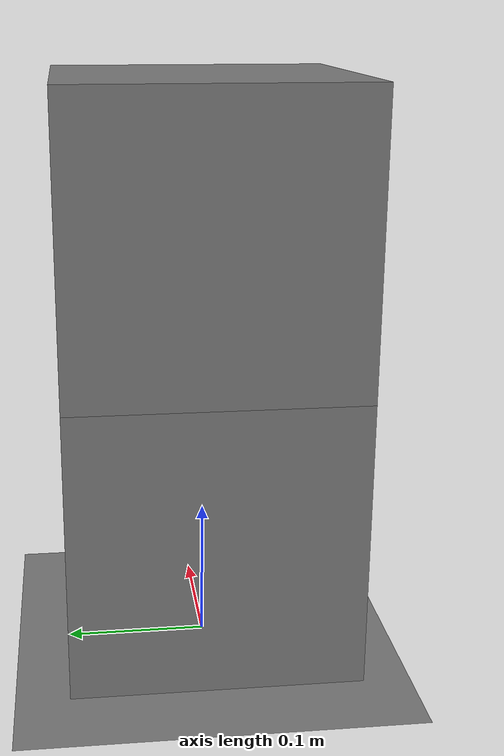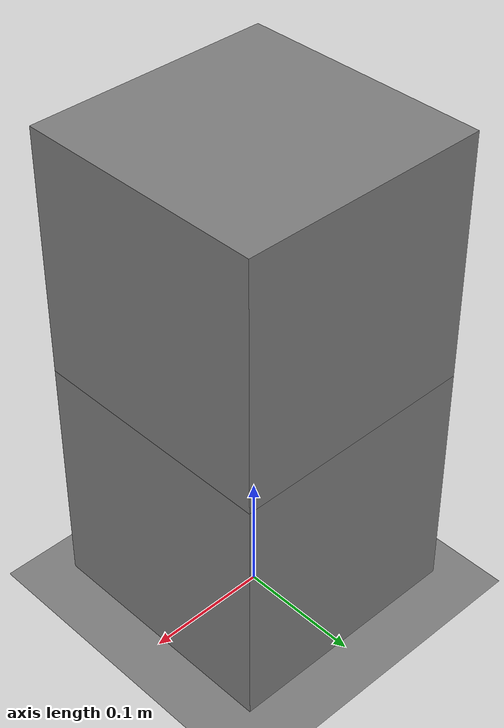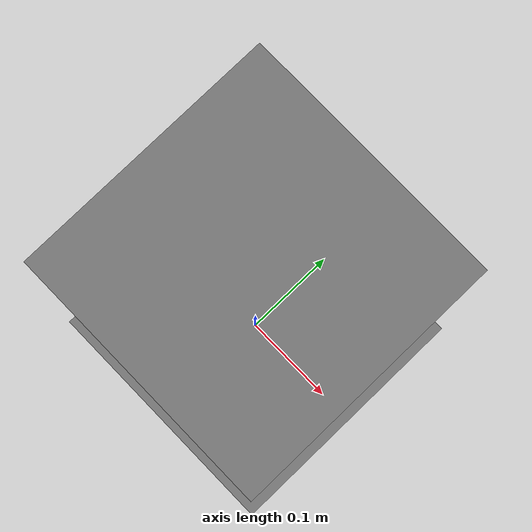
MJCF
<mujoco model="box_stack_stable">
            <option gravity="0 0 -9.81" solver="Newton" cone="elliptic"
                    iterations="100" tolerance="1e-8"/>
            <worldbody>
                <geom type="plane" size="5 5 0.1"/>
                <body name="box1" pos="0 0 0.11">
                    <joint type="free"/>
                    <geom type="box" size="0.1 0.1 0.1" mass="1.0"
                          friction="0.5 0.5 0.005"/>
                </body>
                <body name="box2" pos="0 0 0.31">
                    <joint type="free"/>
                    <geom type="box" size="0.1 0.1 0.1" mass="1.0"
                          friction="0.5 0.5 0.005"/>
                </body>
            </worldbody>
        </mujoco>
